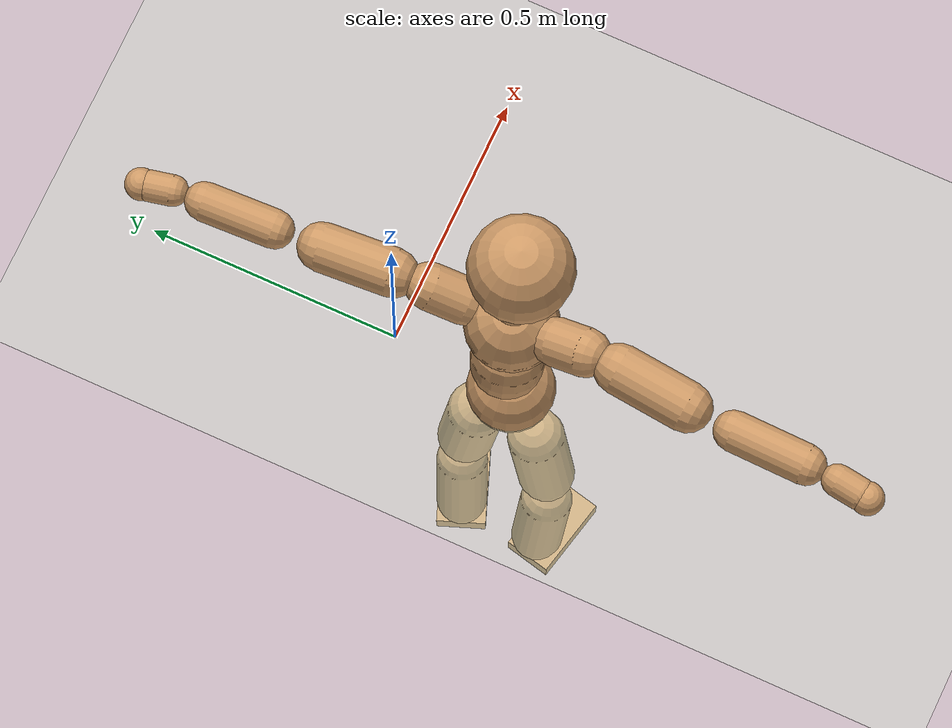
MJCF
<mujoco model="humanoid">
  <compiler coordinate="local" angle="radian"/>
  <default>
    <joint damping="0.0" armature="0.01" stiffness="0.0" limited="true"/>
    <geom conaffinity="1" condim="3" contype="7" margin="0.001" rgba="0.8 0.6 .4 1"/>
  </default>
  <asset>
    <texture type="skybox" builtin="gradient" rgb1=".4 .5 .6" rgb2="0 0 0" width="100" height="100"/>
    <texture builtin="flat" height="1278" mark="cross" markrgb="1 1 1" name="texgeom" random="0.01" rgb1="0.8 0.6 0.4" rgb2="0.8 0.6 0.4" type="cube" width="127"/>
    <texture builtin="checker" height="100" name="texplane" rgb1="0 0 0" rgb2="0.8 0.8 0.8" type="2d" width="100"/>
    <material name="MatPlane" reflectance="0.5" shininess="1" specular="1" texrepeat="60 60" texture="texplane"/>
    <material name="geom" texture="texgeom" texuniform="true"/>
  </asset>
  <worldbody>
    <light cutoff="100" diffuse="1 1 1" dir="-0 0 -1.3" directional="true" exponent="1" pos="0 0 1.3" specular=".1 .1 .1"/>
    <geom conaffinity="1" condim="3" name="floor" pos="0 0 0" rgba="0.8 0.9 0.8 1" size="100 100 .2" type="plane" material="MatPlane"/>
    <body name="Pelvis" pos="-0.0011 -0.2379 0.006">
      <freejoint name="Pelvis"/>
      <geom type="sphere" contype="1" conaffinity="1" density="500" size="0.0847" pos="0.0000 0.0000 0.0000" name="Pelvis"/>
      <body name="L_Hip" pos="-0.0252 0.0515 -0.0793">
        <joint name="L_Hip_x" type="hinge" pos="0 0 0" axis="1 0 0" stiffness="800" damping="80" armature="0.02" range="-180.0000 180.0000"/>
        <joint name="L_Hip_y" type="hinge" pos="0 0 0" axis="0 1 0" stiffness="800" damping="80" armature="0.02" range="-180.0000 180.0000"/>
        <joint name="L_Hip_z" type="hinge" pos="0 0 0" axis="0 0 1" stiffness="800" damping="80" armature="0.02" range="-180.0000 180.0000"/>
        <geom type="capsule" contype="1" conaffinity="1" density="500" fromto="0.0015 0.0084 -0.0731 0.0061 0.0335 -0.2926" size="0.0554" name="L_Hip"/>
        <body name="L_Knee" pos="0.0076 0.0419 -0.3657">
          <joint name="L_Knee_x" type="hinge" pos="0 0 0" axis="1 0 0" stiffness="800" damping="80" armature="0.02" range="-180.0000 180.0000"/>
          <joint name="L_Knee_y" type="hinge" pos="0 0 0" axis="0 1 0" stiffness="800" damping="80" armature="0.02" range="-180.0000 180.0000"/>
          <joint name="L_Knee_z" type="hinge" pos="0 0 0" axis="0 0 1" stiffness="800" damping="80" armature="0.02" range="-180.0000 180.0000"/>
          <geom type="capsule" contype="1" conaffinity="1" density="500" fromto="-0.0068 -0.0023 -0.0748 -0.0271 -0.0091 -0.2990" size="0.0498" name="L_Knee"/>
          <body name="L_Ankle" pos="-0.0338 -0.0114 -0.3738">
            <joint name="L_Ankle_x" type="hinge" pos="0 0 0" axis="1 0 0" stiffness="800" damping="80" armature="0.02" range="-180.0000 180.0000"/>
            <joint name="L_Ankle_y" type="hinge" pos="0 0 0" axis="0 1 0" stiffness="800" damping="80" armature="0.02" range="-180.0000 180.0000"/>
            <joint name="L_Ankle_z" type="hinge" pos="0 0 0" axis="0 0 1" stiffness="800" damping="80" armature="0.02" range="-180.0000 180.0000"/>
            <geom type="box" contype="1" conaffinity="1" density="500" pos="0.0551 0.0210 -0.0274" size="0.0772 0.0492 0.0195" quat="0.9835 0.0000 0.0000 0.1808" name="L_Ankle"/>
            <body name="L_Toe" pos="0.1101 0.0419 -0.0547">
              <joint name="L_Toe_x" type="hinge" pos="0 0 0" axis="1 0 0" stiffness="500" damping="50" armature="0.02" range="-180.0000 180.0000"/>
              <joint name="L_Toe_y" type="hinge" pos="0 0 0" axis="0 1 0" stiffness="500" damping="50" armature="0.02" range="-180.0000 180.0000"/>
              <joint name="L_Toe_z" type="hinge" pos="0 0 0" axis="0 0 1" stiffness="500" damping="50" armature="0.02" range="-180.0000 180.0000"/>
              <geom type="box" contype="1" conaffinity="1" density="500" pos="0.0000 0.0000 0.0282" size="0.001 0.0024 0.001" quat="0.9826 0.0000 0.0000 0.1856" name="L_Toe"/>
            </body>
          </body>
        </body>
      </body>
      <body name="R_Hip" pos="-0.0221 -0.0541 -0.0871">
        <joint name="R_Hip_x" type="hinge" pos="0 0 0" axis="1 0 0" stiffness="800" damping="80" armature="0.02" range="-180.0000 180.0000"/>
        <joint name="R_Hip_y" type="hinge" pos="0 0 0" axis="0 1 0" stiffness="800" damping="80" armature="0.02" range="-180.0000 180.0000"/>
        <joint name="R_Hip_z" type="hinge" pos="0 0 0" axis="0 0 1" stiffness="800" damping="80" armature="0.02" range="-180.0000 180.0000"/>
        <geom type="capsule" contype="1" conaffinity="1" density="500" fromto="-0.0006 -0.0083 -0.0717 -0.0026 -0.0334 -0.2868" size="0.0549" name="R_Hip"/>
        <body name="R_Knee" pos="-0.0032 -0.0417 -0.3585">
          <joint name="R_Knee_x" type="hinge" pos="0 0 0" axis="1 0 0" stiffness="800" damping="80" armature="0.02" range="-180.0000 180.0000"/>
          <joint name="R_Knee_y" type="hinge" pos="0 0 0" axis="0 1 0" stiffness="800" damping="80" armature="0.02" range="-180.0000 180.0000"/>
          <joint name="R_Knee_z" type="hinge" pos="0 0 0" axis="0 0 1" stiffness="800" damping="80" armature="0.02" range="-180.0000 180.0000"/>
          <geom type="capsule" contype="1" conaffinity="1" density="500" fromto="-0.0063 0.0033 -0.0735 -0.0250 0.0133 -0.2941" size="0.0506" name="R_Knee"/>
          <body name="R_Ankle" pos="-0.0313 0.0166 -0.3677">
            <joint name="R_Ankle_x" type="hinge" pos="0 0 0" axis="1 0 0" stiffness="800" damping="80" armature="0.02" range="-180.0000 180.0000"/>
            <joint name="R_Ankle_y" type="hinge" pos="0 0 0" axis="0 1 0" stiffness="800" damping="80" armature="0.02" range="-180.0000 180.0000"/>
            <joint name="R_Ankle_z" type="hinge" pos="0 0 0" axis="0 0 1" stiffness="800" damping="80" armature="0.02" range="-180.0000 180.0000"/>
            <geom type="box" contype="1" conaffinity="1" density="500" pos="0.0595 -0.0134 -0.0285" size="0.0828 0.0473 0.0202" quat="0.9939 0.0000 0.0000 -0.1103" name="R_Ankle"/>
            <body name="R_Toe" pos="0.1189 -0.0267 -0.0571">
              <joint name="R_Toe_x" type="hinge" pos="0 0 0" axis="1 0 0" stiffness="500" damping="50" armature="0.02" range="-180.0000 180.0000"/>
              <joint name="R_Toe_y" type="hinge" pos="0 0 0" axis="0 1 0" stiffness="500" damping="50" armature="0.02" range="-180.0000 180.0000"/>
              <joint name="R_Toe_z" type="hinge" pos="0 0 0" axis="0 0 1" stiffness="500" damping="50" armature="0.02" range="-180.0000 180.0000"/>
              <geom type="box" contype="1" conaffinity="1" density="500" pos="0.0000 0.0000 0.0308" size="0.0009 0.0023 0.0011" quat="0.9949 0.0000 0.0000 -0.1006" name="R_Toe"/>
            </body>
          </body>
        </body>
      </body>
      <body name="Torso" pos="-0.0208 0.0037 0.117">
        <joint name="Torso_x" type="hinge" pos="0 0 0" axis="1 0 0" stiffness="1000" damping="100" armature="0.02" range="-180.0000 180.0000"/>
        <joint name="Torso_y" type="hinge" pos="0 0 0" axis="0 1 0" stiffness="1000" damping="100" armature="0.02" range="-180.0000 180.0000"/>
        <joint name="Torso_z" type="hinge" pos="0 0 0" axis="0 0 1" stiffness="1000" damping="100" armature="0.02" range="-180.0000 180.0000"/>
        <geom type="capsule" contype="1" conaffinity="1" density="500" fromto="0.0202 0.0030 0.0848 0.0135 0.0020 0.0565" size="0.0692" name="Torso"/>
        <body name="Spine" pos="0.0337 0.0049 0.1413">
          <joint name="Spine_x" type="hinge" pos="0 0 0" axis="1 0 0" stiffness="1000" damping="100" armature="0.02" range="-180.0000 180.0000"/>
          <joint name="Spine_y" type="hinge" pos="0 0 0" axis="0 1 0" stiffness="1000" damping="100" armature="0.02" range="-180.0000 180.0000"/>
          <joint name="Spine_z" type="hinge" pos="0 0 0" axis="0 0 1" stiffness="1000" damping="100" armature="0.02" range="-180.0000 180.0000"/>
          <geom type="capsule" contype="1" conaffinity="1" density="500" fromto="0.0017 -0.0012 0.0339 0.0012 -0.0008 0.0226" size="0.0682" name="Spine"/>
          <body name="Chest" pos="0.0029 -0.0019 0.0565">
            <joint name="Chest_x" type="hinge" pos="0 0 0" axis="1 0 0" stiffness="1000" damping="100" armature="0.02" range="-180.0000 180.0000"/>
            <joint name="Chest_y" type="hinge" pos="0 0 0" axis="0 1 0" stiffness="1000" damping="100" armature="0.02" range="-180.0000 180.0000"/>
            <joint name="Chest_z" type="hinge" pos="0 0 0" axis="0 0 1" stiffness="1000" damping="100" armature="0.02" range="-180.0000 180.0000"/>
            <geom type="capsule" contype="1" conaffinity="1" density="500" fromto="-0.0131 -0.0054 0.0796 -0.0088 -0.0036 0.0531" size="0.0885" name="Chest"/>
            <body name="Neck" pos="-0.0262 -0.0138 0.1938">
              <joint name="Neck_x" type="hinge" pos="0 0 0" axis="1 0 0" stiffness="500" damping="50" armature="0.02" range="-180.0000 180.0000"/>
              <joint name="Neck_y" type="hinge" pos="0 0 0" axis="0 1 0" stiffness="500" damping="50" armature="0.02" range="-180.0000 180.0000"/>
              <joint name="Neck_z" type="hinge" pos="0 0 0" axis="0 0 1" stiffness="500" damping="50" armature="0.02" range="-180.0000 180.0000"/>
              <geom type="capsule" contype="1" conaffinity="1" density="500" fromto="0.0100 0.0016 0.0187 0.0399 0.0064 0.0748" size="0.0414" name="Neck"/>
              <body name="Head" pos="0.0499 0.008 0.0935">
                <joint name="Head_x" type="hinge" pos="0 0 0" axis="1 0 0" stiffness="500" damping="50" armature="0.02" range="-180.0000 180.0000"/>
                <joint name="Head_y" type="hinge" pos="0 0 0" axis="0 1 0" stiffness="500" damping="50" armature="0.02" range="-180.0000 180.0000"/>
                <joint name="Head_z" type="hinge" pos="0 0 0" axis="0 0 1" stiffness="500" damping="50" armature="0.02" range="-180.0000 180.0000"/>
                <geom type="sphere" contype="1" conaffinity="1" density="500" size="0.0986" pos="0.0000 0.0000 0.0000" name="Head"/>
              </body>
            </body>
            <body name="L_Thorax" pos="-0.018 0.063 0.1022">
              <joint name="L_Thorax_x" type="hinge" pos="0 0 0" axis="1 0 0" stiffness="500" damping="50" armature="0.02" range="-180.0000 180.0000"/>
              <joint name="L_Thorax_y" type="hinge" pos="0 0 0" axis="0 1 0" stiffness="500" damping="50" armature="0.02" range="-180.0000 180.0000"/>
              <joint name="L_Thorax_z" type="hinge" pos="0 0 0" axis="0 0 1" stiffness="500" damping="50" armature="0.02" range="-180.0000 180.0000"/>
              <geom type="capsule" contype="1" conaffinity="1" density="500" fromto="-0.0028 0.0218 0.0082 -0.0113 0.0872 0.0326" size="0.0449" name="L_Thorax"/>
              <body name="L_Shoulder" pos="-0.0142 0.109 0.0408">
                <joint name="L_Shoulder_x" type="hinge" pos="0 0 0" axis="1 0 0" stiffness="500" damping="50" armature="0.02" range="-720.0000 720.0000"/>
                <joint name="L_Shoulder_y" type="hinge" pos="0 0 0" axis="0 1 0" stiffness="500" damping="50" armature="0.02" range="-720.0000 720.0000"/>
                <joint name="L_Shoulder_z" type="hinge" pos="0 0 0" axis="0 0 1" stiffness="500" damping="50" armature="0.02" range="-720.0000 720.0000"/>
                <geom type="capsule" contype="1" conaffinity="1" density="500" fromto="-0.0024 0.0463 -0.0025 -0.0096 0.1852 -0.0101" size="0.0461" name="L_Shoulder"/>
                <body name="L_Elbow" pos="-0.0119 0.2314 -0.0126">
                  <joint name="L_Elbow_x" type="hinge" pos="0 0 0" axis="1 0 0" stiffness="500" damping="50" armature="0.02" range="-720.0000 720.0000"/>
                  <joint name="L_Elbow_y" type="hinge" pos="0 0 0" axis="0 1 0" stiffness="500" damping="50" armature="0.02" range="-720.0000 720.0000"/>
                  <joint name="L_Elbow_z" type="hinge" pos="0 0 0" axis="0 0 1" stiffness="500" damping="50" armature="0.02" range="-720.0000 720.0000"/>
                  <geom type="capsule" contype="1" conaffinity="1" density="500" fromto="-0.0023 0.0456 0.0014 -0.0090 0.1825 0.0056" size="0.0367" name="L_Elbow"/>
                  <body name="L_Wrist" pos="-0.0113 0.2282 0.007">
                    <joint name="L_Wrist_x" type="hinge" pos="0 0 0" axis="1 0 0" stiffness="300" damping="30" armature="0.02" range="-180.0000 180.0000"/>
                    <joint name="L_Wrist_y" type="hinge" pos="0 0 0" axis="0 1 0" stiffness="300" damping="30" armature="0.02" range="-180.0000 180.0000"/>
                    <joint name="L_Wrist_z" type="hinge" pos="0 0 0" axis="0 0 1" stiffness="300" damping="30" armature="0.02" range="-180.0000 180.0000"/>
                    <geom type="capsule" contype="1" conaffinity="1" density="500" fromto="-0.0026 0.0148 -0.0018 -0.0105 0.0591 -0.0073" size="0.0294" name="L_Wrist"/>
                    <body name="L_Hand" pos="-0.0132 0.0738 -0.0091">
                      <joint name="L_Hand_x" type="hinge" pos="0 0 0" axis="1 0 0" stiffness="300" damping="30" armature="0.02" range="-180.0000 180.0000"/>
                      <joint name="L_Hand_y" type="hinge" pos="0 0 0" axis="0 1 0" stiffness="300" damping="30" armature="0.02" range="-180.0000 180.0000"/>
                      <joint name="L_Hand_z" type="hinge" pos="0 0 0" axis="0 0 1" stiffness="300" damping="30" armature="0.02" range="-180.0000 180.0000"/>
                      <geom type="sphere" contype="1" conaffinity="1" density="500" size="0.0305" pos="0.0000 0.0000 0.0000" name="L_Hand"/>
                    </body>
                  </body>
                </body>
              </body>
            </body>
            <body name="R_Thorax" pos="-0.0215 -0.0762 0.1022">
              <joint name="R_Thorax_x" type="hinge" pos="0 0 0" axis="1 0 0" stiffness="500" damping="50" armature="0.02" range="-180.0000 180.0000"/>
              <joint name="R_Thorax_y" type="hinge" pos="0 0 0" axis="0 1 0" stiffness="500" damping="50" armature="0.02" range="-180.0000 180.0000"/>
              <joint name="R_Thorax_z" type="hinge" pos="0 0 0" axis="0 0 1" stiffness="500" damping="50" armature="0.02" range="-180.0000 180.0000"/>
              <geom type="capsule" contype="1" conaffinity="1" density="500" fromto="-0.0010 -0.0203 0.0082 -0.0038 -0.0811 0.0330" size="0.0456" name="R_Thorax"/>
              <body name="R_Shoulder" pos="-0.0048 -0.1014 0.0412">
                <joint name="R_Shoulder_x" type="hinge" pos="0 0 0" axis="1 0 0" stiffness="500" damping="50" armature="0.02" range="-720.0000 720.0000"/>
                <joint name="R_Shoulder_y" type="hinge" pos="0 0 0" axis="0 1 0" stiffness="500" damping="50" armature="0.02" range="-720.0000 720.0000"/>
                <joint name="R_Shoulder_z" type="hinge" pos="0 0 0" axis="0 0 1" stiffness="500" damping="50" armature="0.02" range="-720.0000 720.0000"/>
                <geom type="capsule" contype="1" conaffinity="1" density="500" fromto="-0.0040 -0.0461 -0.0026 -0.0161 -0.1843 -0.0103" size="0.0475" name="R_Shoulder"/>
                <body name="R_Elbow" pos="-0.0201 -0.2304 -0.0129">
                  <joint name="R_Elbow_x" type="hinge" pos="0 0 0" axis="1 0 0" stiffness="500" damping="50" armature="0.02" range="-720.0000 720.0000"/>
                  <joint name="R_Elbow_y" type="hinge" pos="0 0 0" axis="0 1 0" stiffness="500" damping="50" armature="0.02" range="-720.0000 720.0000"/>
                  <joint name="R_Elbow_z" type="hinge" pos="0 0 0" axis="0 0 1" stiffness="500" damping="50" armature="0.02" range="-720.0000 720.0000"/>
                  <geom type="capsule" contype="1" conaffinity="1" density="500" fromto="-0.0015 -0.0474 0.0014 -0.0060 -0.1896 0.0055" size="0.038" name="R_Elbow"/>
                  <body name="R_Wrist" pos="-0.0075 -0.237 0.0069">
                    <joint name="R_Wrist_x" type="hinge" pos="0 0 0" axis="1 0 0" stiffness="300" damping="30" armature="0.02" range="-180.0000 180.0000"/>
                    <joint name="R_Wrist_y" type="hinge" pos="0 0 0" axis="0 1 0" stiffness="300" damping="30" armature="0.02" range="-180.0000 180.0000"/>
                    <joint name="R_Wrist_z" type="hinge" pos="0 0 0" axis="0 0 1" stiffness="300" damping="30" armature="0.02" range="-180.0000 180.0000"/>
                    <geom type="capsule" contype="1" conaffinity="1" density="500" fromto="-0.0017 -0.0153 -0.0014 -0.0069 -0.0614 -0.0057" size="0.0303" name="R_Wrist"/>
                    <body name="R_Hand" pos="-0.0086 -0.0767 -0.0072">
                      <joint name="R_Hand_x" type="hinge" pos="0 0 0" axis="1 0 0" stiffness="300" damping="30" armature="0.02" range="-180.0000 180.0000"/>
                      <joint name="R_Hand_y" type="hinge" pos="0 0 0" axis="0 1 0" stiffness="300" damping="30" armature="0.02" range="-180.0000 180.0000"/>
                      <joint name="R_Hand_z" type="hinge" pos="0 0 0" axis="0 0 1" stiffness="300" damping="30" armature="0.02" range="-180.0000 180.0000"/>
                      <geom type="sphere" contype="1" conaffinity="1" density="500" size="0.0313" pos="0.0000 0.0000 0.0000" name="R_Hand"/>
                    </body>
                  </body>
                </body>
              </body>
            </body>
          </body>
        </body>
      </body>
    </body>
  </worldbody>
  <actuator>
    <motor name="L_Hip_x" joint="L_Hip_x" gear="500"/>
    <motor name="L_Hip_y" joint="L_Hip_y" gear="500"/>
    <motor name="L_Hip_z" joint="L_Hip_z" gear="500"/>
    <motor name="L_Knee_x" joint="L_Knee_x" gear="500"/>
    <motor name="L_Knee_y" joint="L_Knee_y" gear="500"/>
    <motor name="L_Knee_z" joint="L_Knee_z" gear="500"/>
    <motor name="L_Ankle_x" joint="L_Ankle_x" gear="500"/>
    <motor name="L_Ankle_y" joint="L_Ankle_y" gear="500"/>
    <motor name="L_Ankle_z" joint="L_Ankle_z" gear="500"/>
    <motor name="L_Toe_x" joint="L_Toe_x" gear="500"/>
    <motor name="L_Toe_y" joint="L_Toe_y" gear="500"/>
    <motor name="L_Toe_z" joint="L_Toe_z" gear="500"/>
    <motor name="R_Hip_x" joint="R_Hip_x" gear="500"/>
    <motor name="R_Hip_y" joint="R_Hip_y" gear="500"/>
    <motor name="R_Hip_z" joint="R_Hip_z" gear="500"/>
    <motor name="R_Knee_x" joint="R_Knee_x" gear="500"/>
    <motor name="R_Knee_y" joint="R_Knee_y" gear="500"/>
    <motor name="R_Knee_z" joint="R_Knee_z" gear="500"/>
    <motor name="R_Ankle_x" joint="R_Ankle_x" gear="500"/>
    <motor name="R_Ankle_y" joint="R_Ankle_y" gear="500"/>
    <motor name="R_Ankle_z" joint="R_Ankle_z" gear="500"/>
    <motor name="R_Toe_x" joint="R_Toe_x" gear="500"/>
    <motor name="R_Toe_y" joint="R_Toe_y" gear="500"/>
    <motor name="R_Toe_z" joint="R_Toe_z" gear="500"/>
    <motor name="Torso_x" joint="Torso_x" gear="500"/>
    <motor name="Torso_y" joint="Torso_y" gear="500"/>
    <motor name="Torso_z" joint="Torso_z" gear="500"/>
    <motor name="Spine_x" joint="Spine_x" gear="500"/>
    <motor name="Spine_y" joint="Spine_y" gear="500"/>
    <motor name="Spine_z" joint="Spine_z" gear="500"/>
    <motor name="Chest_x" joint="Chest_x" gear="500"/>
    <motor name="Chest_y" joint="Chest_y" gear="500"/>
    <motor name="Chest_z" joint="Chest_z" gear="500"/>
    <motor name="Neck_x" joint="Neck_x" gear="500"/>
    <motor name="Neck_y" joint="Neck_y" gear="500"/>
    <motor name="Neck_z" joint="Neck_z" gear="500"/>
    <motor name="Head_x" joint="Head_x" gear="500"/>
    <motor name="Head_y" joint="Head_y" gear="500"/>
    <motor name="Head_z" joint="Head_z" gear="500"/>
    <motor name="L_Thorax_x" joint="L_Thorax_x" gear="500"/>
    <motor name="L_Thorax_y" joint="L_Thorax_y" gear="500"/>
    <motor name="L_Thorax_z" joint="L_Thorax_z" gear="500"/>
    <motor name="L_Shoulder_x" joint="L_Shoulder_x" gear="500"/>
    <motor name="L_Shoulder_y" joint="L_Shoulder_y" gear="500"/>
    <motor name="L_Shoulder_z" joint="L_Shoulder_z" gear="500"/>
    <motor name="L_Elbow_x" joint="L_Elbow_x" gear="500"/>
    <motor name="L_Elbow_y" joint="L_Elbow_y" gear="500"/>
    <motor name="L_Elbow_z" joint="L_Elbow_z" gear="500"/>
    <motor name="L_Wrist_x" joint="L_Wrist_x" gear="500"/>
    <motor name="L_Wrist_y" joint="L_Wrist_y" gear="500"/>
    <motor name="L_Wrist_z" joint="L_Wrist_z" gear="500"/>
    <motor name="L_Hand_x" joint="L_Hand_x" gear="500"/>
    <motor name="L_Hand_y" joint="L_Hand_y" gear="500"/>
    <motor name="L_Hand_z" joint="L_Hand_z" gear="500"/>
    <motor name="R_Thorax_x" joint="R_Thorax_x" gear="500"/>
    <motor name="R_Thorax_y" joint="R_Thorax_y" gear="500"/>
    <motor name="R_Thorax_z" joint="R_Thorax_z" gear="500"/>
    <motor name="R_Shoulder_x" joint="R_Shoulder_x" gear="500"/>
    <motor name="R_Shoulder_y" joint="R_Shoulder_y" gear="500"/>
    <motor name="R_Shoulder_z" joint="R_Shoulder_z" gear="500"/>
    <motor name="R_Elbow_x" joint="R_Elbow_x" gear="500"/>
    <motor name="R_Elbow_y" joint="R_Elbow_y" gear="500"/>
    <motor name="R_Elbow_z" joint="R_Elbow_z" gear="500"/>
    <motor name="R_Wrist_x" joint="R_Wrist_x" gear="500"/>
    <motor name="R_Wrist_y" joint="R_Wrist_y" gear="500"/>
    <motor name="R_Wrist_z" joint="R_Wrist_z" gear="500"/>
    <motor name="R_Hand_x" joint="R_Hand_x" gear="500"/>
    <motor name="R_Hand_y" joint="R_Hand_y" gear="500"/>
    <motor name="R_Hand_z" joint="R_Hand_z" gear="500"/>
  </actuator>
  <contact>
    <exclude body1="Torso" body2="Chest"/>
    <exclude body1="Head" body2="Chest"/>
    <exclude body1="R_Knee" body2="R_Toe"/>
    <exclude body1="R_Knee" body2="L_Ankle"/>
    <exclude body1="R_Knee" body2="L_Toe"/>
    <exclude body1="L_Knee" body2="L_Toe"/>
    <exclude body1="L_Knee" body2="R_Ankle"/>
    <exclude body1="L_Knee" body2="R_Toe"/>
    <exclude body1="L_Shoulder" body2="Chest"/>
    <exclude body1="R_Shoulder" body2="Chest"/>
  </contact>
  <sensor/>
  <size njmax="700" nconmax="700"/>
</mujoco>
